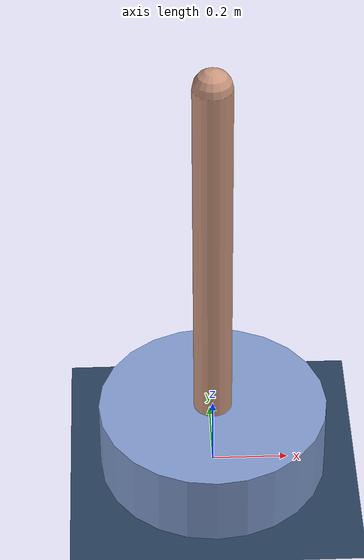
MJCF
<mujoco model="cartpole">
    <compiler angle="radian"/>
    <option timestep="0.01"/>

    <asset>
        <texture type="skybox" builtin="gradient" rgb1="0.3 0.5 0.7" rgb2="0 0 0" width="512" height="3072"/>
        <texture type="2d" name="groundplane" builtin="checker" mark="edge" rgb1="0.2 0.3 0.4" rgb2="0.1 0.2 0.3" markrgb="0.8 0.8 0.8" width="300" height="300"/>
        <material name="groundplane" texture="groundplane" texuniform="true" texrepeat="5 5" reflectance="0.2"/>
    </asset>

    <worldbody>
        <!-- ground -->
        <geom name="ground" size="0 0 0.05" type="plane" material="groundplane"/>

        <!-- platform + pole -->
        <body name="platform" pos="0 0 0.1">
            <joint name="platform_x" type="slide" axis="1 0 0"/>
            <joint name="platform_y" type="slide" axis="0 1 0"/>
            <geom name="platform_geom" type="cylinder" size="0.3 0.1" rgba="0.5 0.6 0.8 1"/>

            <body name="pole" pos="0 0 0.1">
                <joint name="hinge_x" type="hinge" axis="1 0 0"/>
                <joint name="hinge_y" type="hinge" axis="0 1 0"/>
                <geom name="pole_geom" type="capsule" fromto="0 0 0 0 0 1" size="0.05" rgba="0.8 0.6 0.5 1"/>
            </body>

        </body>
        </worldbody>

    <actuator>
        <motor joint="platform_x" ctrlrange="-10000 10000"/>
        <motor joint="platform_y" ctrlrange="-10000 10000"/>
    </actuator>
</mujoco>
